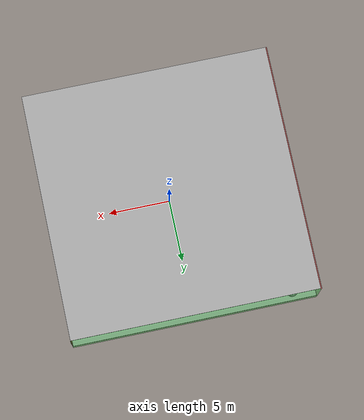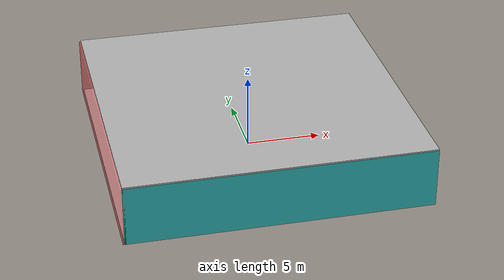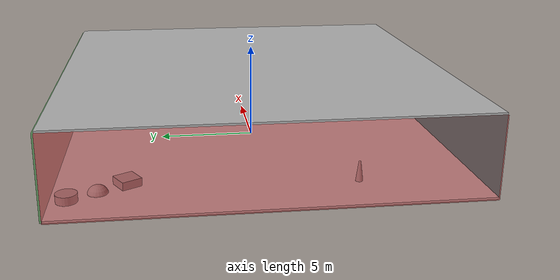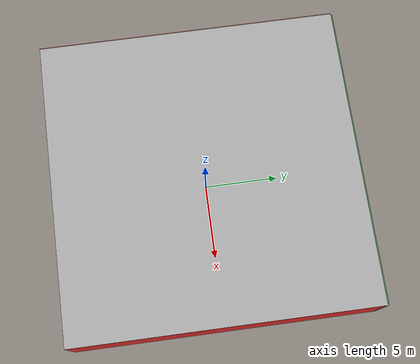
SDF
<sdf version="1.4">
 <world name="default">
  <physics type="ode">
   <max_step_size>0.001</max_step_size>
   <real_time_factor>1</real_time_factor>
   <real_time_update_rate>1000</real_time_update_rate>
   <gravity>0 0 -9.8</gravity>
  </physics>
  <scene><ambient>0.4 0.4 0.4 1</ambient><background>0.7 0.7 0.7 1</background><shadows>1</shadows></scene>
  <model name="Surrounding">
   <static>1</static>
   <link name="Ceiling">
    <collision name="Ceiling_Collision"><geometry><box><size>20 20 0.1</size></box></geometry></collision>
    <visual name="Ceiling_Visual">
     <geometry><box><size>20 20 0.1</size></box></geometry>
     <material>
      <script><uri>file://media/materials/scripts/gazebo.material</uri><name>Gazebo/JointAnchor</name></script>
     </material>
    </visual>
    <pose>0 0 4.05 0 0 0</pose>
   </link>
   <link name="Wall_South">
    <collision name="Wall_South_Collision">
     <geometry><box><size>20 0 4</size></box></geometry>
     <pose>0 0 2 0 -0 0</pose>
    </collision>
    <visual name="Wall_South_Visual">
     <pose>0 0 2 0 -0 0</pose>
     <geometry><box><size>20 0 4</size></box></geometry>
     <material>
      <script><uri>file://media/materials/scripts/gazebo.material</uri><name>Gazebo/TurquoiseGlow</name></script>
     </material>
    </visual>
    <velocity_decay><linear>0</linear><angular>0</angular></velocity_decay>
    <pose>0 -10 0 0 -0 0</pose>
   </link>
   <link name="Wall_East">
    <collision name="Wall_21_Collision">
     <geometry><box><size>20 0 4</size></box></geometry>
     <pose>0 0 2 0 -0 0</pose>
    </collision>
    <visual name="Wall_21_Visual">
     <pose>0 0 2 0 -0 0</pose>
     <geometry><box><size>20 0 4</size></box></geometry>
     <material>
      <script><uri>file://media/materials/scripts/gazebo.material</uri><name>Gazebo/Red</name></script>
     </material>
    </visual>
    <velocity_decay><linear>0</linear><angular>0</angular></velocity_decay>
    <pose>10 0 0 0 -0 1.5708</pose>
   </link>
   <link name="Wall_North">
    <collision name="Wall_22_Collision">
     <geometry><box><size>20 0.2 4</size></box></geometry>
     <pose>0 0 2 0 -0 0</pose>
    </collision>
    <visual name="Wall_22_Visual">
     <pose>0 0 2 0 -0 0</pose>
     <geometry><box><size>20 0.2 4</size></box></geometry>
     <material>
      <script><uri>file://media/materials/scripts/gazebo.material</uri><name>Gazebo/GreenTransparent</name></script>
     </material>
    </visual>
    <velocity_decay><linear>0</linear><angular>0</angular></velocity_decay>
    <pose>0 10 0 0 -0 0</pose>
   </link>
   <link name="Wall_West">
    <collision name="Wall_23_Collision">
     <geometry><box><size>20 0.2 4</size></box></geometry>
     <pose>0 0 2 0 -0 0</pose>
    </collision>
    <visual name="Wall_23_Visual">
     <pose>0 0 2 0 -0 0</pose>
     <geometry><box><size>20 0.2 4</size></box></geometry>
     <material>
      <script><uri>file://media/materials/scripts/gazebo.material</uri><name>Gazebo/RedTransparent</name></script>
     </material>
    </visual>
    <velocity_decay><linear>0</linear><angular>0</angular></velocity_decay>
    <pose>-10 0 0 0 0 -1.5708</pose>
   </link>
   <link name="Ground_link">
    <collision name="collision">
     <pose>0 0 .05 0 -0 0</pose>
     <geometry><box><size>20 20 0.1</size></box></geometry>
    </collision>
    <visual name="visual">
     <pose>0 0 .05 0 -0 0</pose>
     <geometry><box><size>20 20 0.1</size></box></geometry>
     <material>
      <script><uri>file://media/materials/scripts/gazebo.material</uri><name>Gazebo/White</name></script>
     </material>
    </visual>
   </link>
   <static>1</static>
  </model>
  <spherical_coordinates>
   <surface_model>EARTH_WGS84</surface_model>
   <latitude_deg>0</latitude_deg>
   <longitude_deg>0</longitude_deg>
   <elevation>0</elevation>
   <heading_deg>0</heading_deg>
  </spherical_coordinates>
  <light name="lightball_0" type="diffuse">
   <diffuse>0.8 0.8 0.8 1</diffuse>
   <specular>0.2 0.2 0.2 1</specular>
   <attenuation>
    <range>100</range>
    <constant>0.7</constant>
    <linear>0.01</linear>
    <quadratic>0.001</quadratic>
   </attenuation>
   <direction>-0.5 0.1 -0.9</direction>
   <pose>-4.74486595009 -5.45595691573 3.80629109354 0 0 0</pose>
  </light>
  <light name="lightball_1" type="diffuse">
   <diffuse>0.8 0.8 0.8 1</diffuse>
   <specular>0.2 0.2 0.2 1</specular>
   <attenuation>
    <range>100</range>
    <constant>0.7</constant>
    <linear>0.01</linear>
    <quadratic>0.001</quadratic>
   </attenuation>
   <direction>-0.5 0.1 -0.9</direction>
   <pose>-2.70773042388 -9.84772725695 3.10638323146 0 0 0</pose>
  </light>
  <light name="lightball_2" type="diffuse">
   <diffuse>0.8 0.8 0.8 1</diffuse>
   <specular>0.2 0.2 0.2 1</specular>
   <attenuation>
    <range>100</range>
    <constant>0.7</constant>
    <linear>0.01</linear>
    <quadratic>0.001</quadratic>
   </attenuation>
   <direction>-0.5 0.1 -0.9</direction>
   <pose>1.87391905072 -5.27571764509 1.40727625798 0 0 0</pose>
  </light>
  <light name="lightball_3" type="diffuse">
   <diffuse>0.8 0.8 0.8 1</diffuse>
   <specular>0.2 0.2 0.2 1</specular>
   <attenuation>
    <range>100</range>
    <constant>0.7</constant>
    <linear>0.01</linear>
    <quadratic>0.001</quadratic>
   </attenuation>
   <direction>-0.5 0.1 -0.9</direction>
   <pose>6.18178193552 -6.65797593609 3.04866043859 0 0 0</pose>
  </light>
  <light name="lightball_4" type="diffuse">
   <diffuse>0.8 0.8 0.8 1</diffuse>
   <specular>0.2 0.2 0.2 1</specular>
   <attenuation>
    <range>100</range>
    <constant>0.7</constant>
    <linear>0.01</linear>
    <quadratic>0.001</quadratic>
   </attenuation>
   <direction>-0.5 0.1 -0.9</direction>
   <pose>3.50079495616 -5.091869017 0.932311132133 0 0 0</pose>
  </light>
  <light name="lightball_5" type="diffuse">
   <diffuse>0.8 0.8 0.8 1</diffuse>
   <specular>0.2 0.2 0.2 1</specular>
   <attenuation>
    <range>100</range>
    <constant>0.7</constant>
    <linear>0.01</linear>
    <quadratic>0.001</quadratic>
   </attenuation>
   <direction>-0.5 0.1 -0.9</direction>
   <pose>9.3830735358 -6.39660903626 1.41201837061 0 0 0</pose>
  </light>
  <light name="lightball_6" type="diffuse">
   <diffuse>0.8 0.8 0.8 1</diffuse>
   <specular>0.2 0.2 0.2 1</specular>
   <attenuation>
    <range>100</range>
    <constant>0.7</constant>
    <linear>0.01</linear>
    <quadratic>0.001</quadratic>
   </attenuation>
   <direction>-0.5 0.1 -0.9</direction>
   <pose>6.21276901393 -1.49048743017 2.8830285589 0 0 0</pose>
  </light>
  <light name="lightball_7" type="diffuse">
   <diffuse>0.8 0.8 0.8 1</diffuse>
   <specular>0.2 0.2 0.2 1</specular>
   <attenuation>
    <range>100</range>
    <constant>0.7</constant>
    <linear>0.01</linear>
    <quadratic>0.001</quadratic>
   </attenuation>
   <direction>-0.5 0.1 -0.9</direction>
   <pose>-5.8699230579 7.40265659865 2.946886859 0 0 0</pose>
  </light>
  <light name="lightball_8" type="diffuse">
   <diffuse>0.8 0.8 0.8 1</diffuse>
   <specular>0.2 0.2 0.2 1</specular>
   <attenuation>
    <range>100</range>
    <constant>0.7</constant>
    <linear>0.01</linear>
    <quadratic>0.001</quadratic>
   </attenuation>
   <direction>-0.5 0.1 -0.9</direction>
   <pose>-0.998316867028 -5.5206154515 0.817886433031 0 0 0</pose>
  </light>
  <light name="lightball_9" type="diffuse">
   <diffuse>0.8 0.8 0.8 1</diffuse>
   <specular>0.2 0.2 0.2 1</specular>
   <attenuation>
    <range>100</range>
    <constant>0.7</constant>
    <linear>0.01</linear>
    <quadratic>0.001</quadratic>
   </attenuation>
   <direction>-0.5 0.1 -0.9</direction>
   <pose>-5.08079090168 -7.49809205292 2.38604960118 0 0 0</pose>
  </light>
  <light name="lightball_10" type="diffuse">
   <diffuse>0.8 0.8 0.8 1</diffuse>
   <specular>0.2 0.2 0.2 1</specular>
   <attenuation>
    <range>100</range>
    <constant>0.7</constant>
    <linear>0.01</linear>
    <quadratic>0.001</quadratic>
   </attenuation>
   <direction>-0.5 0.1 -0.9</direction>
   <pose>6.49145500593 -5.52128413893 3.19430592346 0 0 0</pose>
  </light>
  <light name="lightball_11" type="diffuse">
   <diffuse>0.8 0.8 0.8 1</diffuse>
   <specular>0.2 0.2 0.2 1</specular>
   <attenuation>
    <range>100</range>
    <constant>0.7</constant>
    <linear>0.01</linear>
    <quadratic>0.001</quadratic>
   </attenuation>
   <direction>-0.5 0.1 -0.9</direction>
   <pose>-3.00919324094 6.22579856515 2.26416969016 0 0 0</pose>
  </light>
  <include>
   <uri>model://construction_cone</uri>
   <pose>-7.4394837045 -4.25584760318 0 0 0 0.34836651747</pose>
  </include>
  <include>
   <uri>model://textured_shapes</uri>
   <pose>-7.39945543184 7.90726939617 0 0 0 0.522555092897</pose>
  </include>
  <include><uri>model://table</uri><pose>5.180750993 4.46830987917 0 0 0 3.04438961291</pose></include>
  <include>
   <uri>model://construction_cone</uri>
   <pose>4.14816367924 7.2168202666 0 0 0 2.35203350171</pose>
  </include>
 </world>
</sdf>

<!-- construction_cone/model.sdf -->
<sdf version="1.5">
  <model name="Construction Cone">
    <link name="link">
      <collision name="collision">
        <geometry>
          <mesh>
            <scale>10 10 10</scale>
            <uri>file://isr-testbed/construction_cone/meshes/construction_cone.dae</uri>
          </mesh>
        </geometry>
      </collision>
      <visual name="visual">
        <geometry>
          <mesh>
            <scale>10 10 10</scale>
            <uri>file://isr-testbed/construction_cone/meshes/construction_cone.dae</uri>
          </mesh>
        </geometry>
      </visual>
    </link>
  </model>
</sdf>

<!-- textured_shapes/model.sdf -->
<sdf version="1.6">
  <model name="textured_shapes">
    <pose>0 0 0.5 0 0 0</pose>
    <link name="box">
      <pose>0 -1.5 0 0 0 0</pose>
      <collision name="collision">
        <geometry>
          <box>
            <size>1 1 1</size>
          </box>
        </geometry>
      </collision>
      <visual name="visual">
        <geometry>
          <box>
            <size>1 1 1</size>
          </box>
        </geometry>
        <material>
          <script>
            <uri>model://../model_source/models/textured_shapes/materials/scripts</uri>
            <uri>model://../model_source/models/textured_shapes/materials/textures</uri>
            <name>TexturedShape/Squares</name>
          </script>
        </material>
      </visual>
    </link>
    <link name="sphere">
      <collision name="collision">
        <geometry>
          <sphere>
            <radius>0.5</radius>
          </sphere>
        </geometry>
      </collision>
      <visual name="visual">
        <geometry>
          <sphere>
            <radius>0.5</radius>
          </sphere>
        </geometry>
        <material>
          <script>
            <uri>model://../model_source/models/textured_shapes/materials/scripts</uri>
            <uri>model://../model_source/models/textured_shapes/materials/textures</uri>
            <name>TexturedShape/Squares</name>
          </script>
        </material>
      </visual>
    </link>
    <link name="cylinder">
      <pose>0 1.5 0 0 0 0</pose>
      <collision name="collision">
        <geometry>
          <cylinder>
            <radius>0.5</radius>
            <length>1</length>
          </cylinder>
        </geometry>
      </collision>
      <visual name="visual">
        <geometry>
          <cylinder>
            <radius>0.5</radius>
            <length>1</length>
          </cylinder>
        </geometry>
        <material>
          <script>
            <uri>model://../model_source/models/textured_shapes/materials/scripts</uri>
            <uri>model://../model_source/models/textured_shapes/materials/textures</uri>
            <name>TexturedShape/Squares</name>
          </script>
        </material>
      </visual>
    </link>
  </model>
</sdf>

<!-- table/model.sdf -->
<sdf version="1.5">
  <model name="table">
    <static>true</static>
    <link name="link">
      <collision name="surface">
        <pose>0 0 1.0 0 0 0</pose>
        <geometry>
          <box>
            <size>1.5 0.8 0.03</size>
          </box>
        </geometry>
        <surface>
          <friction>
            <ode>
              <mu>0.6</mu>
              <mu2>0.6</mu2>
            </ode>
          </friction>
        </surface>
      </collision>
      <visual name="visual1">
        <pose>0 0 1.0 0 0 0</pose>
        <geometry>
          <box>
            <size>1.5 0.8 0.03</size>
          </box>
        </geometry>
        <material>
          <script>
            <uri>model://media/materials/scripts/gazebo.material</uri>
            <name>Gazebo/Wood</name>
          </script>
        </material>
      </visual>
      <collision name="front_left_leg">
        <pose>0.68 0.38 0.5 0 0 0</pose>
        <geometry>
          <cylinder>
            <radius>0.02</radius>
            <length>1.0</length>
          </cylinder>
        </geometry>
      </collision>
      <visual name="front_left_leg">
        <pose>0.68 0.38 0.5 0 0 0</pose>
        <geometry>
          <cylinder>
            <radius>0.02</radius>
            <length>1.0</length>
          </cylinder>
        </geometry>
        <material>
          <script>
            <uri>model://media/materials/scripts/gazebo.material</uri>
            <name>Gazebo/Grey</name>
          </script>
        </material>
      </visual>
      <collision name="front_right_leg">
        <pose>0.68 -0.38 0.5 0 0 0</pose>
        <geometry>
          <cylinder>
            <radius>0.02</radius>
            <length>1.0</length>
          </cylinder>
        </geometry>
      </collision>
      <visual name="front_right_leg">
        <pose>0.68 -0.38 0.5 0 0 0</pose>
        <geometry>
          <cylinder>
            <radius>0.02</radius>
            <length>1.0</length>
          </cylinder>
        </geometry>
        <material>
          <script>
            <uri>model://media/materials/scripts/gazebo.material</uri>
            <name>Gazebo/Grey</name>
          </script>
        </material>
      </visual>
      <collision name="back_right_leg">
        <pose>-0.68 -0.38 0.5 0 0 0</pose>
        <geometry>
          <cylinder>
            <radius>0.02</radius>
            <length>1.0</length>
          </cylinder>
        </geometry>
      </collision>
      <visual name="back_right_leg">
        <pose>-0.68 -0.38 0.5 0 0 0</pose>
        <geometry>
          <cylinder>
            <radius>0.02</radius>
            <length>1.0</length>
          </cylinder>
        </geometry>
        <material>
          <script>
            <uri>model://media/materials/scripts/gazebo.material</uri>
            <name>Gazebo/Grey</name>
          </script>
        </material>
      </visual>
      <collision name="back_left_leg">
        <pose>-0.68 0.38 0.5 0 0 0</pose>
        <geometry>
          <cylinder>
            <radius>0.02</radius>
            <length>1.0</length>
          </cylinder>
        </geometry>
      </collision>
      <visual name="back_left_leg">
        <pose>-0.68 0.38 0.5 0 0 0</pose>
        <geometry>
          <cylinder>
            <radius>0.02</radius>
            <length>1.0</length>
          </cylinder>
        </geometry>
        <material>
          <script>
            <uri>model://media/materials/scripts/gazebo.material</uri>
            <name>Gazebo/Grey</name>
          </script>
        </material>
      </visual>
    </link>
  </model>
</sdf>
